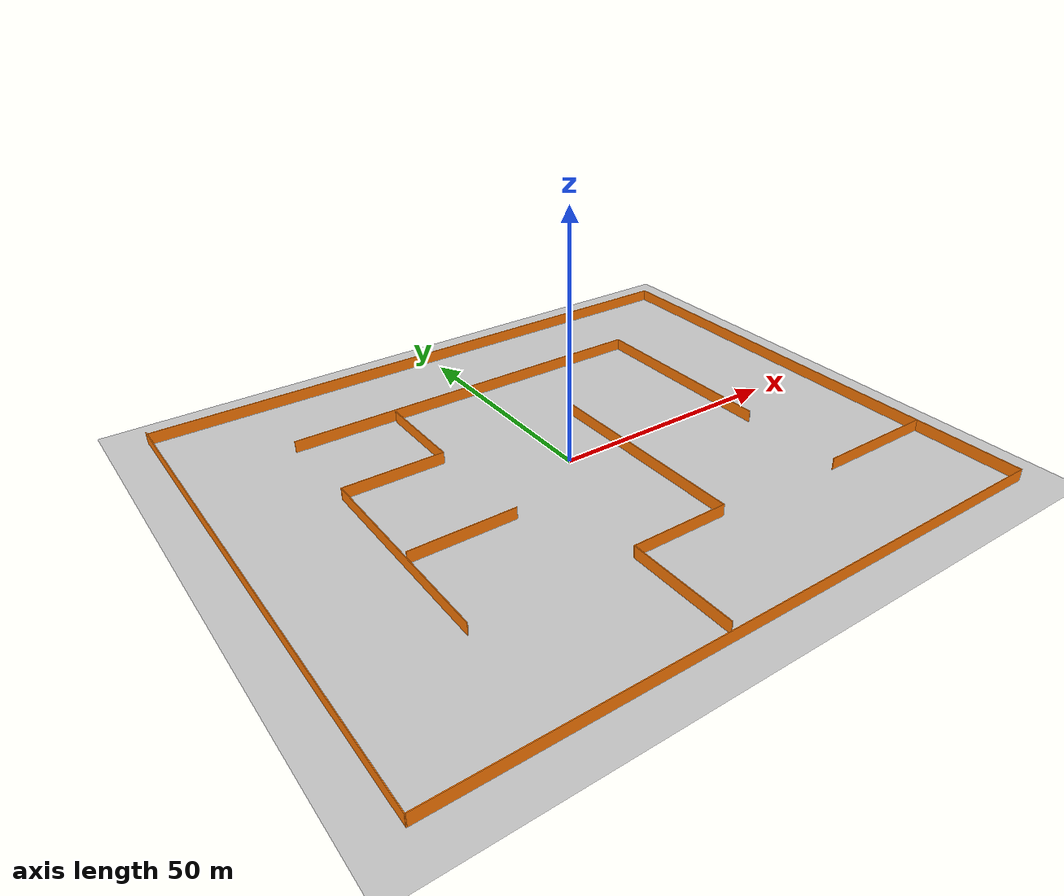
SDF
<sdf version="1.6">
 <world name="default">
  <light name="sun" type="directional">
   <pose>0 0 10 0 -0 0</pose>
   <diffuse>0.8 0.8 0.8 1</diffuse>
   <specular>0.2 0.2 0.2 1</specular>
   <attenuation>
    <range>1000</range>
    <constant>0.9</constant>
    <linear>0.01</linear>
    <quadratic>0.001</quadratic>
   </attenuation>
   <direction>-0.5 0.1 -0.9</direction>
  </light>
  <model name="ground_plane">
   <static>1</static>
   <link name="link">
    <collision name="collision">
     <geometry><plane><normal>0 0 1</normal><size>100 100</size></plane></geometry>
     <surface><friction><ode><mu>100</mu><mu2>50</mu2></ode></friction></surface>
    </collision>
    <visual name="visual">
     <cast_shadows>0</cast_shadows>
     <geometry><plane><normal>0 0 1</normal><size>100 100</size></plane></geometry>
     <material>
      <script><uri>file://media/materials/scripts/gazebo.material</uri><name>Gazebo/Grey</name></script>
     </material>
    </visual>
   </link>
  </model>
  <gravity>0 0 -9.8</gravity>
  <magnetic_field>6e-06 2.3e-05 -4.2e-05</magnetic_field>
  <atmosphere type="adiabatic"/>
  <physics name="default_physics" default="0" type="ode">
   <max_step_size>0.001</max_step_size>
   <real_time_factor>1</real_time_factor>
   <real_time_update_rate>1000</real_time_update_rate>
  </physics>
  <scene><ambient>0.4 0.4 0.4 1</ambient><background>0.7 0.7 0.7 1</background><shadows>1</shadows></scene>
  <spherical_coordinates>
   <surface_model>EARTH_WGS84</surface_model>
   <latitude_deg>0</latitude_deg>
   <longitude_deg>0</longitude_deg>
   <elevation>0</elevation>
   <heading_deg>0</heading_deg>
  </spherical_coordinates>
  <model name="maze">
   <pose>-0.008791 0.04808 0 0 -0 0</pose>
   <link name="Wall_0">
    <collision name="Wall_0_Collision">
     <geometry><box><size>126.75 0.15 2.5</size></box></geometry>
     <pose>0 0 1.25 0 -0 0</pose>
    </collision>
    <visual name="Wall_0_Visual">
     <pose>0 0 1.25 0 -0 0</pose>
     <geometry><box><size>126.75 0.15 2.5</size></box></geometry>
     <material>
      <script><uri>file://media/materials/scripts/gazebo.material</uri><name>Gazebo/Grey</name></script>
      <ambient>0.996078 0.47451 0.0196078 1</ambient>
     </material>
     <meta><layer>0</layer></meta>
    </visual>
    <pose>0.125002 53.675 0 0 -0 0</pose>
   </link>
   <link name="Wall_1">
    <collision name="Wall_1_Collision">
     <geometry><box><size>108.25 0.15 2.5</size></box></geometry>
     <pose>0 0 1.25 0 -0 0</pose>
    </collision>
    <visual name="Wall_1_Visual">
     <pose>0 0 1.25 0 -0 0</pose>
     <geometry><box><size>108.25 0.15 2.5</size></box></geometry>
     <material>
      <script><uri>file://media/materials/scripts/gazebo.material</uri><name>Gazebo/Grey</name></script>
      <ambient>0.996078 0.47451 0.0196078 1</ambient>
     </material>
     <meta><layer>0</layer></meta>
    </visual>
    <pose>63.425 -0.374999 0 0 -0 -1.5708</pose>
   </link>
   <link name="Wall_10">
    <collision name="Wall_10_Collision">
     <geometry><box><size>44.75 0.15 2.5</size></box></geometry>
     <pose>0 0 1.25 0 -0 0</pose>
    </collision>
    <visual name="Wall_10_Visual">
     <pose>0 0 1.25 0 -0 0</pose>
     <geometry><box><size>44.75 0.15 2.5</size></box></geometry>
     <material>
      <script><uri>file://media/materials/scripts/gazebo.material</uri><name>Gazebo/Grey</name></script>
      <ambient>0.996078 0.47451 0.0196078 1</ambient>
     </material>
     <meta><layer>0</layer></meta>
    </visual>
    <pose>11.1136 -8.0541 0 0 -0 -1.5708</pose>
   </link>
   <link name="Wall_11">
    <collision name="Wall_11_Collision">
     <geometry><box><size>20.25 0.15 2.5</size></box></geometry>
     <pose>0 0 1.25 0 -0 0</pose>
    </collision>
    <visual name="Wall_11_Visual">
     <pose>0 0 1.25 0 -0 0</pose>
     <geometry><box><size>20.25 0.15 2.5</size></box></geometry>
     <material>
      <script><uri>file://media/materials/scripts/gazebo.material</uri><name>Gazebo/Grey</name></script>
      <ambient>0.996078 0.47451 0.0196078 1</ambient>
     </material>
     <meta><layer>0</layer></meta>
    </visual>
    <pose>1.06356 -30.3541 0 0 -0 3.14159</pose>
   </link>
   <link name="Wall_12">
    <collision name="Wall_12_Collision">
     <geometry><box><size>22.75 0.15 2.5</size></box></geometry>
     <pose>0 0 1.25 0 -0 0</pose>
    </collision>
    <visual name="Wall_12_Visual">
     <pose>0 0 1.25 0 -0 0</pose>
     <geometry><box><size>22.75 0.15 2.5</size></box></geometry>
     <material>
      <script><uri>file://media/materials/scripts/gazebo.material</uri><name>Gazebo/Grey</name></script>
      <ambient>0.996078 0.47451 0.0196078 1</ambient>
     </material>
     <meta><layer>0</layer></meta>
    </visual>
    <pose>-8.98644 -41.6541 0 0 -0 -1.5708</pose>
   </link>
   <link name="Wall_14">
    <collision name="Wall_14_Collision">
     <geometry><box><size>19.75 0.15 2.5</size></box></geometry>
     <pose>0 0 1.25 0 -0 0</pose>
    </collision>
    <visual name="Wall_14_Visual">
     <pose>0 0 1.25 0 -0 0</pose>
     <geometry><box><size>19.75 0.15 2.5</size></box></geometry>
     <material>
      <script><uri>file://media/materials/scripts/gazebo.material</uri><name>Gazebo/Grey</name></script>
      <ambient>0.996078 0.47451 0.0196078 1</ambient>
     </material>
     <meta><layer>0</layer></meta>
    </visual>
    <pose>-19.8096 23.3448 0 0 -0 -1.5708</pose>
   </link>
   <link name="Wall_15">
    <collision name="Wall_15_Collision">
     <geometry><box><size>21 0.15 2.5</size></box></geometry>
     <pose>0 0 1.25 0 -0 0</pose>
    </collision>
    <visual name="Wall_15_Visual">
     <pose>0 0 1.25 0 -0 0</pose>
     <geometry><box><size>21 0.15 2.5</size></box></geometry>
     <material>
      <script><uri>file://media/materials/scripts/gazebo.material</uri><name>Gazebo/Grey</name></script>
      <ambient>0.996078 0.47451 0.0196078 1</ambient>
     </material>
     <meta><layer>0</layer></meta>
    </visual>
    <pose>-30.2346 13.5448 0 0 -0 3.14159</pose>
   </link>
   <link name="Wall_16">
    <collision name="Wall_16_Collision">
     <geometry><box><size>44 0.15 2.5</size></box></geometry>
     <pose>0 0 1.25 0 -0 0</pose>
    </collision>
    <visual name="Wall_16_Visual">
     <pose>0 0 1.25 0 -0 0</pose>
     <geometry><box><size>44 0.15 2.5</size></box></geometry>
     <material>
      <script><uri>file://media/materials/scripts/gazebo.material</uri><name>Gazebo/Grey</name></script>
      <ambient>0.996078 0.47451 0.0196078 1</ambient>
     </material>
     <meta><layer>0</layer></meta>
    </visual>
    <pose>-40.6596 -8.38022 0 0 -0 -1.5708</pose>
   </link>
   <link name="Wall_18">
    <collision name="Wall_18_Collision">
     <geometry><box><size>21.5 0.15 2.5</size></box></geometry>
     <pose>0 0 1.25 0 -0 0</pose>
    </collision>
    <visual name="Wall_18_Visual">
     <pose>0 0 1.25 0 -0 0</pose>
     <geometry><box><size>21.5 0.15 2.5</size></box></geometry>
     <material>
      <script><uri>file://media/materials/scripts/gazebo.material</uri><name>Gazebo/Grey</name></script>
      <ambient>0.996078 0.47451 0.0196078 1</ambient>
     </material>
     <meta><layer>0</layer></meta>
    </visual>
    <pose>-29.2296 -9.87551 0 0 -0 0</pose>
   </link>
   <link name="Wall_2">
    <collision name="Wall_2_Collision">
     <geometry><box><size>127 0.15 2.5</size></box></geometry>
     <pose>0 0 1.25 0 -0 0</pose>
    </collision>
    <visual name="Wall_2_Visual">
     <pose>0 0 1.25 0 -0 0</pose>
     <geometry><box><size>127 0.15 2.5</size></box></geometry>
     <material>
      <script><uri>file://media/materials/scripts/gazebo.material</uri><name>Gazebo/Grey</name></script>
      <ambient>0.996078 0.47451 0.0196078 1</ambient>
     </material>
     <meta><layer>0</layer></meta>
    </visual>
    <pose>2e-06 -54.425 0 0 -0 3.14159</pose>
   </link>
   <link name="Wall_3">
    <collision name="Wall_3_Collision">
     <geometry><box><size>109 0.15 2.5</size></box></geometry>
     <pose>0 0 1.25 0 -0 0</pose>
    </collision>
    <visual name="Wall_3_Visual">
     <pose>0 0 1.25 0 -0 0</pose>
     <geometry><box><size>109 0.15 2.5</size></box></geometry>
     <material>
      <script><uri>file://media/materials/scripts/gazebo.material</uri><name>Gazebo/Grey</name></script>
      <ambient>0.996078 0.47451 0.0196078 1</ambient>
     </material>
     <meta><layer>0</layer></meta>
    </visual>
    <pose>-63.425 1e-06 0 0 -0 1.5708</pose>
   </link>
   <link name="Wall_5">
    <collision name="Wall_5_Collision">
     <geometry><box><size>80 0.15 2.5</size></box></geometry>
     <pose>0 0 1.25 0 -0 0</pose>
    </collision>
    <visual name="Wall_5_Visual">
     <pose>0 0 1.25 0 -0 0</pose>
     <geometry><box><size>80 0.15 2.5</size></box></geometry>
     <material>
      <script><uri>file://media/materials/scripts/gazebo.material</uri><name>Gazebo/Grey</name></script>
      <ambient>0.996078 0.47451 0.0196078 1</ambient>
     </material>
     <meta><layer>0</layer></meta>
    </visual>
    <pose>-1.1738 33.863 0 0 -0 0</pose>
   </link>
   <link name="Wall_6">
    <collision name="Wall_6_Collision">
     <geometry><box><size>43.25 0.15 2.5</size></box></geometry>
     <pose>0 0 1.25 0 -0 0</pose>
    </collision>
    <visual name="Wall_6_Visual">
     <pose>0 0 1.25 0 -0 0</pose>
     <geometry><box><size>43.25 0.15 2.5</size></box></geometry>
     <material>
      <script><uri>file://media/materials/scripts/gazebo.material</uri><name>Gazebo/Grey</name></script>
      <ambient>0.996078 0.47451 0.0196078 1</ambient>
     </material>
     <meta><layer>0</layer></meta>
    </visual>
    <pose>38.7512 12.313 0 0 -0 -1.5708</pose>
   </link>
   <link name="Wall_8">
    <collision name="Wall_8_Collision">
     <geometry><box><size>25 0.15 2.5</size></box></geometry>
     <pose>0 0 1.25 0 -0 0</pose>
    </collision>
    <visual name="Wall_8_Visual">
     <pose>0 0 1.25 0 -0 0</pose>
     <geometry><box><size>25 0.15 2.5</size></box></geometry>
     <material>
      <script><uri>file://media/materials/scripts/gazebo.material</uri><name>Gazebo/Grey</name></script>
      <ambient>0.996078 0.47451 0.0196078 1</ambient>
     </material>
     <meta><layer>0</layer></meta>
    </visual>
    <pose>50.8571 -31.5165 0 0 -0 0</pose>
   </link>
   <static>1</static>
  </model>
 </world>
</sdf>
